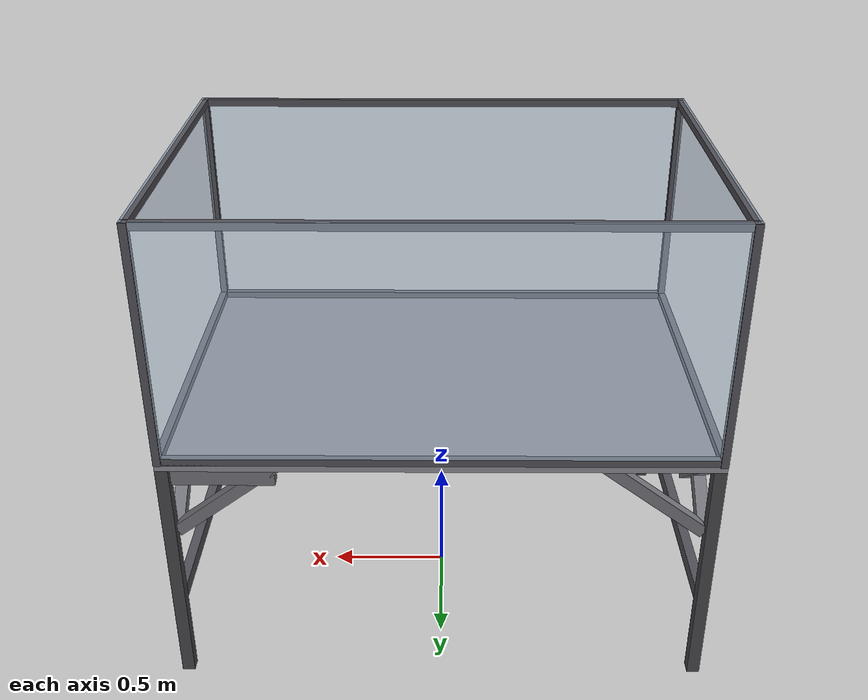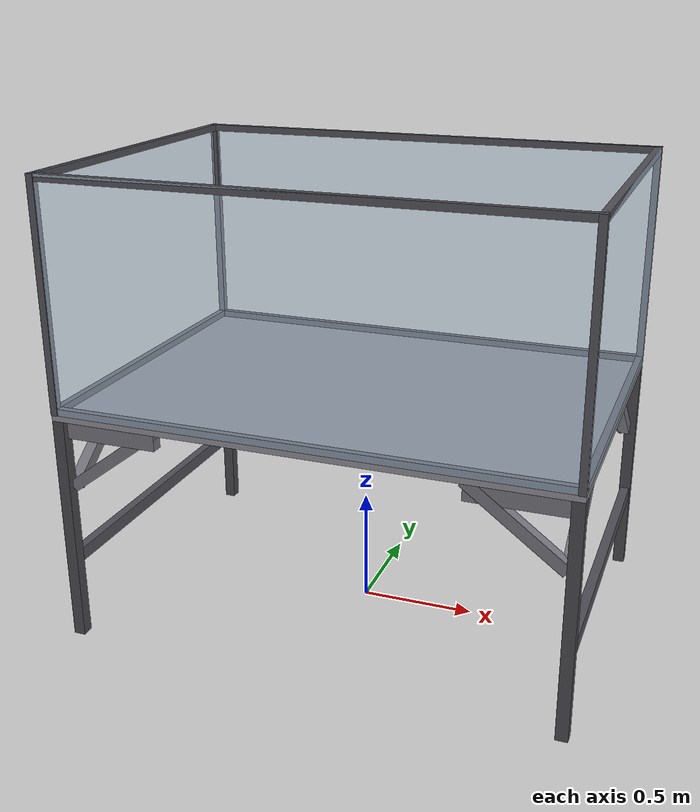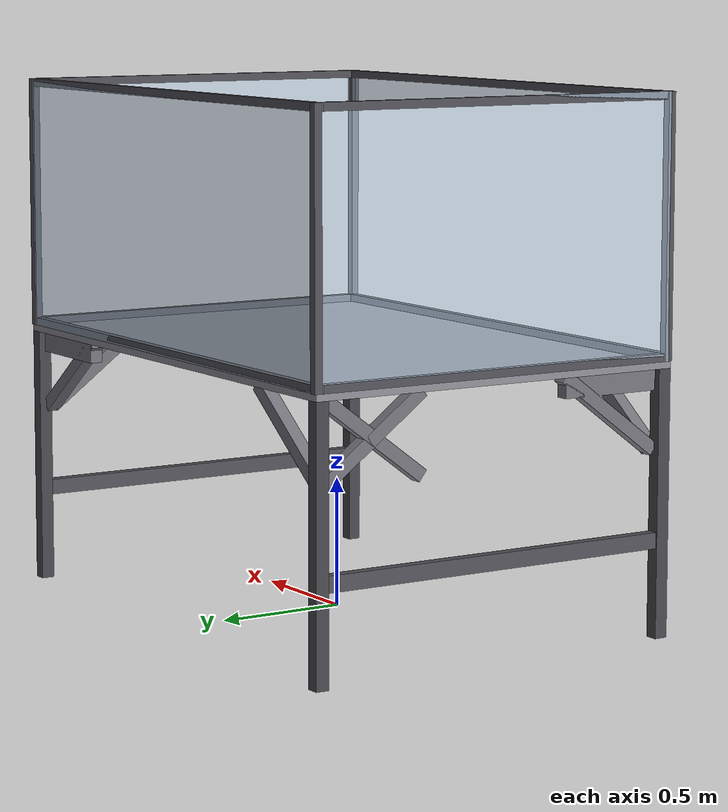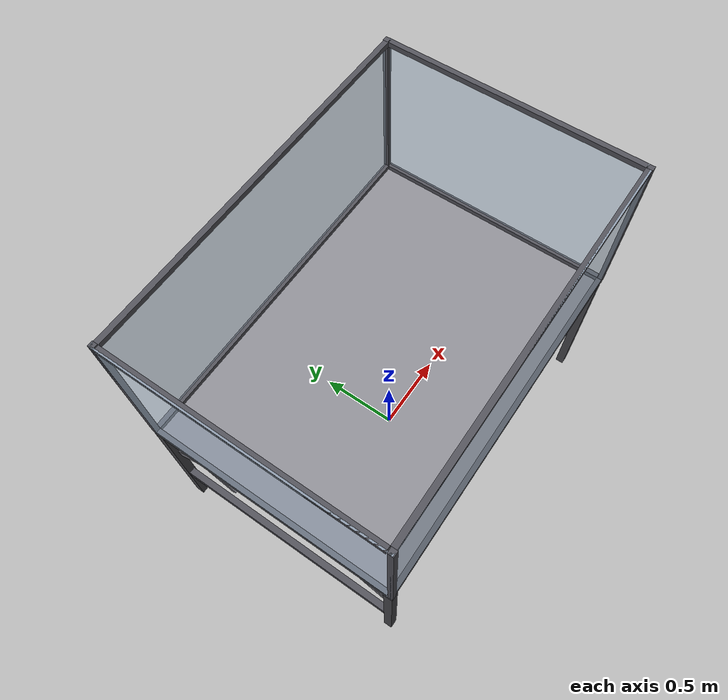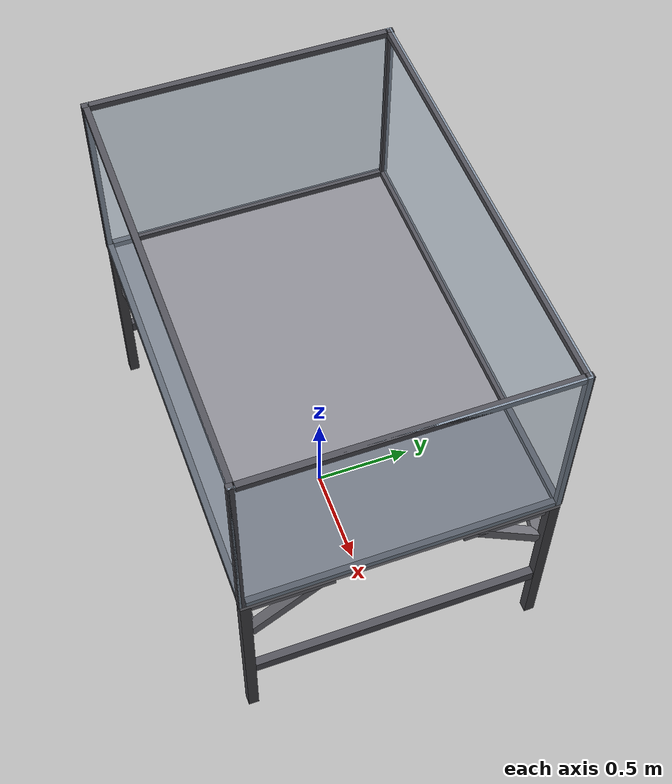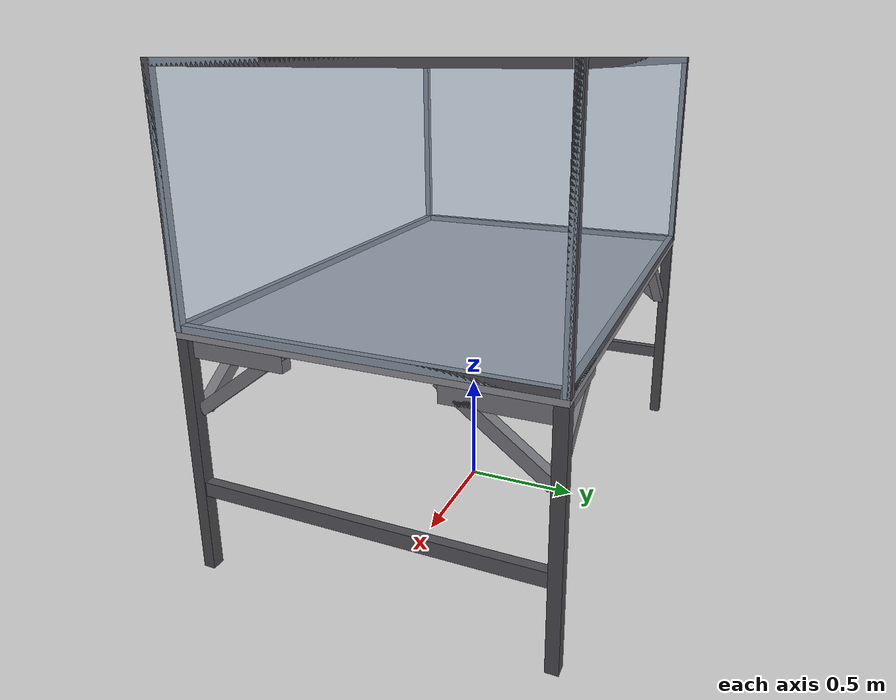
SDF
<?xml version="1.0" ?>
<sdf version="1.6">
  <!-- One-layer metal platform with correct corner triangle brackets -->
  <!-- Overall: 85.5×59.5×40.5 in -> 2.1717 × 1.5113 × 1.0287 m -->

  <model name="metal_platform_85p5x59p5x40p5">
    <static>true</static>
    <link name="shelf">

      <!-- ===== Top deck ===== -->
      <visual name="deck_vis">
        <pose>0 0 1.0160 0 0 0</pose>
        <geometry><box><size>2.1717 1.5113 0.0254</size></box></geometry>
        <material>
          <ambient>0.35 0.35 0.37 1</ambient>
          <diffuse>0.55 0.55 0.58 1</diffuse>
          <specular>0.4 0.4 0.4 1</specular>
        </material>
      </visual>
      <collision name="deck_col">
        <pose>0 0 1.0160 0 0 0</pose>
        <geometry><box><size>2.1717 1.5113 0.0254</size></box></geometry>
      </collision>

      <!-- ===== Corner posts ===== -->
      <visual name="post_fr_vis">
        <pose> 1.06045  0.73025 0.50165 0 0 0</pose>
        <geometry><box><size>0.0508 0.0508 1.0033</size></box></geometry>
        <material><ambient>0.18 0.18 0.18 1</ambient><diffuse>0.28 0.28 0.30 1</diffuse></material>
      </visual>
      <collision name="post_fr_col">
        <pose> 1.06045  0.73025 0.50165 0 0 0</pose>
        <geometry><box><size>0.0508 0.0508 1.0033</size></box></geometry>
      </collision>

      <visual name="post_fl_vis">
        <pose>-1.06045  0.73025 0.50165 0 0 0</pose>
        <geometry><box><size>0.0508 0.0508 1.0033</size></box></geometry>
        <material><ambient>0.18 0.18 0.18 1</ambient><diffuse>0.28 0.28 0.30 1</diffuse></material>
      </visual>
      <collision name="post_fl_col">
        <pose>-1.06045  0.73025 0.50165 0 0 0</pose>
        <geometry><box><size>0.0508 0.0508 1.0033</size></box></geometry>
      </collision>

      <visual name="post_br_vis">
        <pose> 1.06045 -0.73025 0.50165 0 0 0</pose>
        <geometry><box><size>0.0508 0.0508 1.0033</size></box></geometry>
        <material><ambient>0.18 0.18 0.18 1</ambient><diffuse>0.28 0.28 0.30 1</diffuse></material>
      </visual>
      <collision name="post_br_col">
        <pose> 1.06045 -0.73025 0.50165 0 0 0</pose>
        <geometry><box><size>0.0508 0.0508 1.0033</size></box></geometry>
      </collision>

      <visual name="post_bl_vis">
        <pose>-1.06045 -0.73025 0.50165 0 0 0</pose>
        <geometry><box><size>0.0508 0.0508 1.0033</size></box></geometry>
        <material><ambient>0.18 0.18 0.18 1</ambient><diffuse>0.28 0.28 0.30 1</diffuse></material>
      </visual>
      <collision name="post_bl_col">
        <pose>-1.06045 -0.73025 0.50165 0 0 0</pose>
        <geometry><box><size>0.0508 0.0508 1.0033</size></box></geometry>
      </collision>

      <!-- ===== Triangle brackets (cleat + diagonal) at each top corner ===== -->

      <!-- ---- Front-right (+X,+Y) ---- -->
      <!-- Cleats -->
      <visual name="cleat_FR_alongX">
        <pose>0.83505 0.70485 0.9633 0 0 0</pose>
        <geometry><box><size>0.40 0.05 0.08</size></box></geometry>
        <material><ambient>0.22 0.22 0.24 1</ambient><diffuse>0.45 0.45 0.48 1</diffuse></material>
      </visual>
      <visual name="cleat_FR_alongY">
        <pose>1.03505 0.50485 0.9633 0 0 0</pose>
        <geometry><box><size>0.05 0.40 0.08</size></box></geometry>
        <material><ambient>0.22 0.22 0.24 1</ambient><diffuse>0.45 0.45 0.48 1</diffuse></material>
      </visual>
      <!-- Diagonals -->
<!-- Front-right (+X,+Y), XZ brace (flipped) -->
<visual name="diag_FR_XZ">
  <pose>0.83505 0.70485 0.8533 0 -0.6435011088 3.14159265359</pose>
  <geometry><box><size>0.50 0.05 0.05</size></box></geometry>
  <material>
    <ambient>0.22 0.22 0.24 1</ambient>
    <diffuse>0.45 0.45 0.48 1</diffuse>
  </material>
</visual>

      <visual name="diag_FR_YZ">
        <!-- yaw 0, roll -angle -->
        <pose>1.03505 0.50485 0.8533 -0.6435011088 0 0</pose>
        <geometry><box><size>0.05 0.50 0.05</size></box></geometry>
        <material><ambient>0.22 0.22 0.24 1</ambient><diffuse>0.45 0.45 0.48 1</diffuse></material>
      </visual>

      <!-- ---- Front-left (-X,+Y) ---- -->
      <visual name="diag_FL_XZ">
  <pose>-0.83505 0.70485 0.8533 0 -0.6435 0</pose>
  <geometry><box><size>0.50 0.05 0.05</size></box></geometry>
  <material><ambient>0.22 0.22 0.24 1</ambient><diffuse>0.45 0.45 0.48 1</diffuse></material>
</visual>
<visual name="diag_FL_YZ">
  <!-- along +Y at the front, roll down by -angle -->
  <pose>-1.03505 0.50485 0.8533 -0.6435011088 0 0</pose>
  <geometry><box><size>0.05 0.50 0.05</size></box></geometry>
  <material><ambient>0.22 0.22 0.24 1</ambient><diffuse>0.45 0.45 0.48 1</diffuse></material>
</visual>
      <visual name="diag_FL_XZ">
  <pose>-0.83505 0.70485 0.8533 0 -0.6435 0</pose>
  <geometry><box><size>0.50 0.05 0.05</size></box></geometry>
  <material><ambient>0.22 0.22 0.24 1</ambient><diffuse>0.45 0.45 0.48 1</diffuse></material>
</visual>
      <visual name="diag_FL_YZ">
  <pose>-1.03505 0.50485 0.8533 -0.6435 0 3.1416</pose>
  <geometry><box><size>0.05 0.50 0.05</size></box></geometry>
  <material><ambient>0.22 0.22 0.24 1</ambient><diffuse>0.45 0.45 0.48 1</diffuse></material>
</visual>

      <!-- ---- Back-right (+X,-Y) ---- -->
      <visual name="cleat_BR_alongX">
        <pose>0.83505 -0.70485 0.9633 0 0 0</pose>
        <geometry><box><size>0.40 0.05 0.08</size></box></geometry>
        <material><ambient>0.22 0.22 0.24 1</ambient><diffuse>0.45 0.45 0.48 1</diffuse></material>
      </visual>
      <visual name="cleat_BR_alongY">
        <pose>1.03505 -0.50485 0.9633 0 0 0</pose>
        <geometry><box><size>0.05 0.40 0.08</size></box></geometry>
        <material><ambient>0.22 0.22 0.24 1</ambient><diffuse>0.45 0.45 0.48 1</diffuse></material>
      </visual>
      <visual name="diag_BR_XZ">
  <pose>0.83505 -0.70485 0.8533 0 -0.6435 3.1416</pose>
  <geometry><box><size>0.50 0.05 0.05</size></box></geometry>
  <material><ambient>0.22 0.22 0.24 1</ambient><diffuse>0.45 0.45 0.48 1</diffuse></material>
</visual>
      <visual name="diag_BR_YZ">
        <!-- back side: yaw = pi to flip Y, same roll -angle -->
        <pose>1.03505 -0.50485 0.8533 -0.6435011088 0 3.14159265359</pose>
        <geometry><box><size>0.05 0.50 0.05</size></box></geometry>
        <material><ambient>0.22 0.22 0.24 1</ambient><diffuse>0.45 0.45 0.48 1</diffuse></material>
      </visual>

      <!-- ---- Back-left (-X,-Y) ---- -->
      <visual name="cleat_BL_alongX">
        <pose>-0.83505 -0.70485 0.9633 0 0 0</pose>
        <geometry><box><size>0.40 0.05 0.08</size></box></geometry>
        <material><ambient>0.22 0.22 0.24 1</ambient><diffuse>0.45 0.45 0.48 1</diffuse></material>
      </visual>
      <visual name="cleat_BL_alongY">
        <pose>-1.03505 -0.50485 0.9633 0 0 0</pose>
        <geometry><box><size>0.05 0.40 0.08</size></box></geometry>
        <material><ambient>0.22 0.22 0.24 1</ambient><diffuse>0.45 0.45 0.48 1</diffuse></material>
      </visual>
      <visual name="diag_BL_XZ">
  <pose>-0.83505 -0.70485 0.8533 0 -0.6435 0</pose>
  <geometry><box><size>0.50 0.05 0.05</size></box></geometry>
  <material><ambient>0.22 0.22 0.24 1</ambient><diffuse>0.45 0.45 0.48 1</diffuse></material>
</visual>
      <visual name="diag_BL_YZ">
        <!-- back side: yaw = pi, roll -angle -->
        <pose>-1.03505 -0.50485 0.8533 -0.6435011088 0 3.14159265359</pose>
        <geometry><box><size>0.05 0.50 0.05</size></box></geometry>
        <material><ambient>0.22 0.22 0.24 1</ambient><diffuse>0.45 0.45 0.48 1</diffuse></material>
      </visual>

      <!-- (Optional collisions for cleats/diagonals—add like visuals if you need physics) -->
      <!-- Surrounding glass on top of deck (height = 38.6 in = 0.98044 m)   -->
      <!-- Deck top surface z = 1.0287 (from your model)                      -->
      <!-- Glass center z = 1.0287 + 0.98044/2 = 1.51892                      -->
      <!-- Glass thickness: 0.01 m                                           -->
      <!-- Frame (posts/rails): square 0.03 m tubes, inside the footprint     -->
      <!-- Half sizes of deck: hx=1.08585, hy=0.75565                         -->

      <!-- ---- Glass panels (flush with deck edges) ---- -->
      <!-- Front glass (+Y) -->
      <visual name="glass_front_vis">
        <pose>0 0.75065 1.51892 0 0 0</pose> <!-- y = hy - t/2 -->
        <geometry><box><size>2.1717 0.01 0.98044</size></box></geometry>
        <material>
          <ambient>0.7 0.8 0.9 0.5</ambient>
          <diffuse>0.8 0.9 1.0 0.5</diffuse>
          <specular>0.2 0.2 0.2 1</specular>
          <transparency>0.4</transparency>
        </material>
      </visual>
      <collision name="glass_front_col">
        <pose>0 0.75065 1.51892 0 0 0</pose>
        <geometry><box><size>2.1717 0.01 0.98044</size></box></geometry>
      </collision>

      <!-- Back glass (-Y) -->
      <visual name="glass_back_vis">
        <pose>0 -0.75065 1.51892 0 0 0</pose> <!-- y = -hy + t/2 -->
        <geometry><box><size>2.1717 0.01 0.98044</size></box></geometry>
        <material>
          <ambient>0.7 0.8 0.9 0.5</ambient>
          <diffuse>0.8 0.9 1.0 0.5</diffuse>
          <specular>0.2 0.2 0.2 1</specular>
          <transparency>0.4</transparency>
        </material>
      </visual>
      <collision name="glass_back_col">
        <pose>0 -0.75065 1.51892 0 0 0</pose>
        <geometry><box><size>2.1717 0.01 0.98044</size></box></geometry>
      </collision>

      <!-- Right glass (+X) -->
      <visual name="glass_right_vis">
        <pose>1.08085 0 1.51892 0 0 1.57079632679</pose> <!-- x = hx - t/2 -->
        <geometry><box><size>1.5113 0.01 0.98044</size></box></geometry>
        <material>
          <ambient>0.7 0.8 0.9 0.5</ambient>
          <diffuse>0.8 0.9 1.0 0.5</diffuse>
          <specular>0.2 0.2 0.2 1</specular>
          <transparency>0.4</transparency>
        </material>
      </visual>
      <collision name="glass_right_col">
        <pose>1.08085 0 1.51892 0 0 1.57079632679</pose>
        <geometry><box><size>1.5113 0.01 0.98044</size></box></geometry>
      </collision>

      <!-- Left glass (-X) -->
      <visual name="glass_left_vis">
        <pose>-1.08085 0 1.51892 0 0 1.57079632679</pose> <!-- x = -hx + t/2 -->
        <geometry><box><size>1.5113 0.01 0.98044</size></box></geometry>
        <material>
          <ambient>0.7 0.8 0.9 0.5</ambient>
          <diffuse>0.8 0.9 1.0 0.5</diffuse>
          <specular>0.2 0.2 0.2 1</specular>
          <transparency>0.4</transparency>
        </material>
      </visual>
      <collision name="glass_left_col">
        <pose>-1.08085 0 1.51892 0 0 1.57079632679</pose>
        <geometry><box><size>1.5113 0.01 0.98044</size></box></geometry>
      </collision>

      <!-- ---- Frame: 0.03 m square tubes (inside the footprint) ---- -->
      <!-- Corner posts (run from deck top to glass top) -->
      <!-- post center z = deck top (1.0287) + height/2 = 1.51892 -->
      <visual name="frame_post_FR">
        <pose> 1.07085  0.74565 1.51892 0 0 0</pose>
        <geometry><box><size>0.03 0.03 0.98044</size></box></geometry>
        <material><ambient>0.2 0.2 0.22 1</ambient><diffuse>0.32 0.32 0.35 1</diffuse></material>
      </visual>
      <visual name="frame_post_FL">
        <pose>-1.07085  0.74565 1.51892 0 0 0</pose>
        <geometry><box><size>0.03 0.03 0.98044</size></box></geometry>
        <material><ambient>0.2 0.2 0.22 1</ambient><diffuse>0.32 0.32 0.35 1</diffuse></material>
      </visual>
      <visual name="frame_post_BR">
        <pose> 1.07085 -0.74565 1.51892 0 0 0</pose>
        <geometry><box><size>0.03 0.03 0.98044</size></box></geometry>
        <material><ambient>0.2 0.2 0.22 1</ambient><diffuse>0.32 0.32 0.35 1</diffuse></material>
      </visual>
      <visual name="frame_post_BL">
        <pose>-1.07085 -0.74565 1.51892 0 0 0</pose>
        <geometry><box><size>0.03 0.03 0.98044</size></box></geometry>
        <material><ambient>0.2 0.2 0.22 1</ambient><diffuse>0.32 0.32 0.35 1</diffuse></material>
      </visual>

      <!-- Top rails (tie posts at the top) -->
      <!-- z_top = deck top + height - frame/2 = 1.0287 + 0.98044 - 0.015 = 1.99414 -->
      <visual name="frame_top_front">
        <pose>0 0.74065 1.99414 0 0 0</pose>
        <geometry><box><size>2.1117 0.03 0.03</size></box></geometry>
        <material><ambient>0.2 0.2 0.22 1</ambient><diffuse>0.32 0.32 0.35 1</diffuse></material>
      </visual>
      <visual name="frame_top_back">
        <pose>0 -0.74065 1.99414 0 0 0</pose>
        <geometry><box><size>2.1117 0.03 0.03</size></box></geometry>
        <material><ambient>0.2 0.2 0.22 1</ambient><diffuse>0.32 0.32 0.35 1</diffuse></material>
      </visual>
      <visual name="frame_top_right">
        <pose>1.07085 0 1.99414 0 0 1.57079632679</pose>
        <geometry><box><size>1.4513 0.03 0.03</size></box></geometry>
        <material><ambient>0.2 0.2 0.22 1</ambient><diffuse>0.32 0.32 0.35 1</diffuse></material>
      </visual>
      <visual name="frame_top_left">
        <pose>-1.07085 0 1.99414 0 0 1.57079632679</pose>
        <geometry><box><size>1.4513 0.03 0.03</size></box></geometry>
        <material><ambient>0.2 0.2 0.22 1</ambient><diffuse>0.32 0.32 0.35 1</diffuse></material>
      </visual>

      <!-- Bottom rails (sit just above the deck top, help “hold” the glass) -->
      <!-- z_bot = deck top + frame/2 = 1.0287 + 0.015 = 1.0437 -->
      <visual name="frame_bot_front">
        <pose>0 0.74065 1.0437 0 0 0</pose>
        <geometry><box><size>2.1117 0.03 0.03</size></box></geometry>
        <material><ambient>0.2 0.2 0.22 1</ambient><diffuse>0.32 0.32 0.35 1</diffuse></material>
      </visual>
      <visual name="frame_bot_back">
        <pose>0 -0.74065 1.0437 0 0 0</pose>
        <geometry><box><size>2.1117 0.03 0.03</size></box></geometry>
        <material><ambient>0.2 0.2 0.22 1</ambient><diffuse>0.32 0.32 0.35 1</diffuse></material>
      </visual>
      <visual name="frame_bot_right">
        <pose>1.07085 0 1.0437 0 0 1.57079632679</pose>
        <geometry><box><size>1.4513 0.03 0.03</size></box></geometry>
        <material><ambient>0.2 0.2 0.22 1</ambient><diffuse>0.32 0.32 0.35 1</diffuse></material>
      </visual>
      <visual name="frame_bot_left">
        <pose>-1.07085 0 1.0437 0 0 1.57079632679</pose>
        <geometry><box><size>1.4513 0.03 0.03</size></box></geometry>
        <material><ambient>0.2 0.2 0.22 1</ambient><diffuse>0.32 0.32 0.35 1</diffuse></material>
      </visual>

      <!-- Side crossbar on the 59.5" side (RIGHT / +X) -->
      <!-- Depth between inner faces: 59.5" - 2*2" = 55.5" -> 1.4605 m -->
      <!-- Height from floor: 14.5" -> 0.3683 m -->
      <!-- Leg X center (+X side): 1.06045 m -->
      <visual name="side_bar_right_vis">
        <pose>1.06045 0 0.3683 0 0 1.57079632679</pose>
        <geometry>
          <!-- length along Y, thickness ~0.04 m, height 0.06 m -->
          <box><size>1.4605 0.04 0.06</size></box>
        </geometry>
        <material>
          <ambient>0.20 0.20 0.22 1</ambient>
          <diffuse>0.32 0.32 0.35 1</diffuse>
          <specular>0.30 0.30 0.30 1</specular>
        </material>
      </visual>

      <collision name="side_bar_right_col">
        <pose>1.06045 0 0.3683 0 0 1.57079632679</pose>
        <geometry>
          <box><size>1.4605 0.04 0.06</size></box>
        </geometry>
      </collision>

      <!-- Side crossbar on the 59.5" side (LEFT / -X) -->
      <visual name="side_bar_left_vis">
        <pose>-1.06045 0 0.3683 0 0 1.57079632679</pose>
        <geometry>
          <box><size>1.4605 0.04 0.06</size></box>
        </geometry>
        <material>
          <ambient>0.20 0.20 0.22 1</ambient>
          <diffuse>0.32 0.32 0.35 1</diffuse>
          <specular>0.30 0.30 0.30 1</specular>
        </material>
      </visual>

      <collision name="side_bar_left_col">
        <pose>-1.06045 0 0.3683 0 0 1.57079632679</pose>
        <geometry>
          <box><size>1.4605 0.04 0.06</size></box>
        </geometry>
      </collision>

    </link>
  </model>
</sdf>
